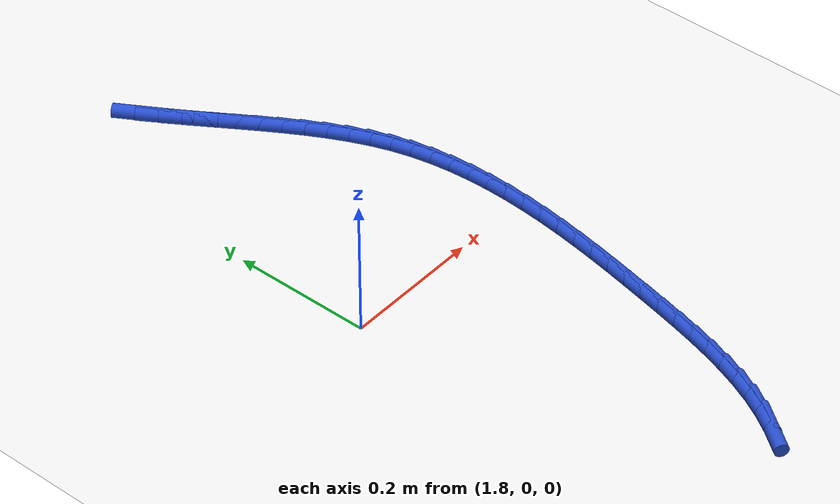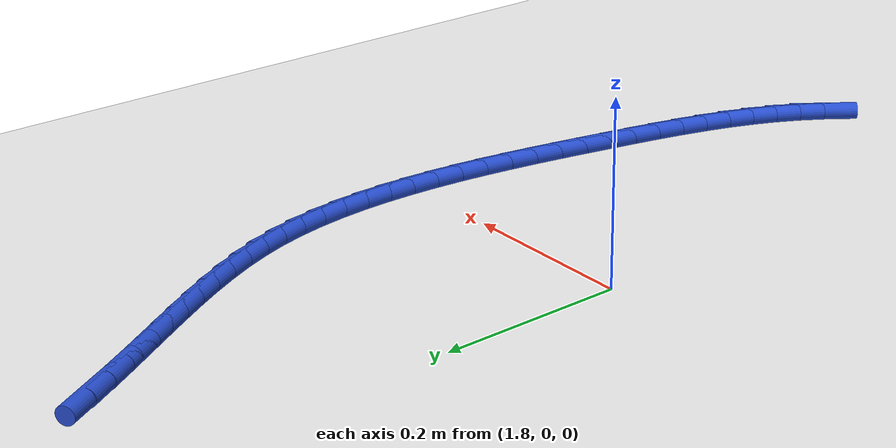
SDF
<sdf version="1.6">
 <world name="default">
  <model name="ground_plane">
   <static>1</static>
   <link name="link">
    <collision name="collision">
     <geometry><plane><normal>0 0 1</normal><size>100 100</size></plane></geometry>
     <surface><friction><ode><mu>100</mu><mu2>50</mu2></ode></friction></surface>
    </collision>
    <visual name="visual">
     <cast_shadows>0</cast_shadows>
     <geometry><plane><normal>0 0 1</normal><size>100 100</size></plane></geometry>
     <material>
      <script><uri>file://media/materials/scripts/gazebo.material</uri><name>Gazebo/WhiteGlow</name></script>
     </material>
    </visual>
   </link>
  </model>
  <model name="line">
   <link name="link_88">
    <pose>1.9231427736042104 0.49322260436814136 0.01 0 1.57 -1.034323555137901</pose>
    <collision name="collision">
     <geometry><cylinder><radius>0.01</radius><length>0.08</length></cylinder></geometry>
    </collision>
    <visual name="visual">
     <material>
      <script><name>Gazebo/Blue</name><uri>file://media/materials/scripts/gazebo.material</uri></script>
     </material>
     <geometry><cylinder><radius>0.01</radius><length>0.08</length></cylinder></geometry>
    </visual>
   </link>
   <link name="link_89">
    <pose>1.9396358434550172 0.465486615626826 0.01 0 1.57 -1.0137122154889575</pose>
    <collision name="collision">
     <geometry><cylinder><radius>0.01</radius><length>0.08</length></cylinder></geometry>
    </collision>
    <visual name="visual">
     <material>
      <script><name>Gazebo/Blue</name><uri>file://media/materials/scripts/gazebo.material</uri></script>
     </material>
     <geometry><cylinder><radius>0.01</radius><length>0.08</length></cylinder></geometry>
    </visual>
   </link>
   <link name="link_90">
    <pose>1.9566392107717923 0.43818928664186235 0.01 0 1.57 -1.0015799758001285</pose>
    <collision name="collision">
     <geometry><cylinder><radius>0.01</radius><length>0.08</length></cylinder></geometry>
    </collision>
    <visual name="visual">
     <material>
      <script><name>Gazebo/Blue</name><uri>file://media/materials/scripts/gazebo.material</uri></script>
     </material>
     <geometry><cylinder><radius>0.01</radius><length>0.08</length></cylinder></geometry>
    </visual>
   </link>
   <link name="link_91">
    <pose>1.9738935290037225 0.4112236632540981 0.01 0 1.57 -0.9979953094751688</pose>
    <collision name="collision">
     <geometry><cylinder><radius>0.01</radius><length>0.08</length></cylinder></geometry>
    </collision>
    <visual name="visual">
     <material>
      <script><name>Gazebo/Blue</name><uri>file://media/materials/scripts/gazebo.material</uri></script>
     </material>
     <geometry><cylinder><radius>0.01</radius><length>0.08</length></cylinder></geometry>
    </visual>
   </link>
   <link name="link_92">
    <pose>1.9911394515999934 0.38448279130438057 0.01 0 1.57 -1.0030992670605055</pose>
    <collision name="collision">
     <geometry><cylinder><radius>0.01</radius><length>0.08</length></cylinder></geometry>
    </collision>
    <visual name="visual">
     <material>
      <script><name>Gazebo/Blue</name><uri>file://media/materials/scripts/gazebo.material</uri></script>
     </material>
     <geometry><cylinder><radius>0.01</radius><length>0.08</length></cylinder></geometry>
    </visual>
   </link>
   <link name="link_93">
    <pose>2.008117632009791 0.3578597166335581 0.01 0 1.57 -1.0171178868025834</pose>
    <collision name="collision">
     <geometry><cylinder><radius>0.01</radius><length>0.08</length></cylinder></geometry>
    </collision>
    <visual name="visual">
     <material>
      <script><name>Gazebo/Blue</name><uri>file://media/materials/scripts/gazebo.material</uri></script>
     </material>
     <geometry><cylinder><radius>0.01</radius><length>0.08</length></cylinder></geometry>
    </visual>
   </link>
   <link name="link_94">
    <pose>2.0245687236823007 0.3312474850824778 0.01 0 1.57 -1.0403564937779026</pose>
    <collision name="collision">
     <geometry><cylinder><radius>0.01</radius><length>0.08</length></cylinder></geometry>
    </collision>
    <visual name="visual">
     <material>
      <script><name>Gazebo/Blue</name><uri>file://media/materials/scripts/gazebo.material</uri></script>
     </material>
     <geometry><cylinder><radius>0.01</radius><length>0.08</length></cylinder></geometry>
    </visual>
   </link>
   <link name="link_95">
    <pose>2.04023338006671 0.3045391424919874 0.01 0 1.57 -1.073171678035509</pose>
    <collision name="collision">
     <geometry><cylinder><radius>0.01</radius><length>0.08</length></cylinder></geometry>
    </collision>
    <visual name="visual">
     <material>
      <script><name>Gazebo/Blue</name><uri>file://media/materials/scripts/gazebo.material</uri></script>
     </material>
     <geometry><cylinder><radius>0.01</radius><length>0.08</length></cylinder></geometry>
    </visual>
   </link>
   <link name="link_96">
    <pose>2.0548522546122028 0.2776277347029349 0.01 0 1.57 -1.1159142051385817</pose>
    <collision name="collision">
     <geometry><cylinder><radius>0.01</radius><length>0.08</length></cylinder></geometry>
    </collision>
    <visual name="visual">
     <material>
      <script><name>Gazebo/Blue</name><uri>file://media/materials/scripts/gazebo.material</uri></script>
     </material>
     <geometry><cylinder><radius>0.01</radius><length>0.08</length></cylinder></geometry>
    </visual>
   </link>
   <link name="link_97">
    <pose>2.0681660007679668 0.2504063075561678 0.01 0 1.57 -1.1688352482575683</pose>
    <collision name="collision">
     <geometry><cylinder><radius>0.01</radius><length>0.08</length></cylinder></geometry>
    </collision>
    <visual name="visual">
     <material>
      <script><name>Gazebo/Blue</name><uri>file://media/materials/scripts/gazebo.material</uri></script>
     </material>
     <geometry><cylinder><radius>0.01</radius><length>0.08</length></cylinder></geometry>
    </visual>
   </link>
   <link name="link_98">
    <pose>2.0799152719831877 0.22276790689253329 0.01 0 1.57 -1.2319520110793298</pose>
    <collision name="collision">
     <geometry><cylinder><radius>0.01</radius><length>0.08</length></cylinder></geometry>
    </collision>
    <visual name="visual">
     <material>
      <script><name>Gazebo/Blue</name><uri>file://media/materials/scripts/gazebo.material</uri></script>
     </material>
     <geometry><cylinder><radius>0.01</radius><length>0.08</length></cylinder></geometry>
    </visual>
   </link>
   <link name="link_99">
    <pose>2.0898407217070507 0.19460557855287974 0.01 0 1.57 -1.303348567766843</pose>
    <collision name="collision">
     <geometry><cylinder><radius>0.01</radius><length>0.08</length></cylinder></geometry>
    </collision>
    <visual name="visual">
     <material>
      <script><name>Gazebo/Blue</name><uri>file://media/materials/scripts/gazebo.material</uri></script>
     </material>
     <geometry><cylinder><radius>0.01</radius><length>0.08</length></cylinder></geometry>
    </visual>
   </link>
   <link name="link_100">
    <pose>2.0977255725825175 0.16583004642413923 0.01 0 1.57 -1.3729117842453613</pose>
    <collision name="collision">
     <geometry><cylinder><radius>0.01</radius><length>0.08</length></cylinder></geometry>
    </collision>
    <visual name="visual">
     <material>
      <script><name>Gazebo/Blue</name><uri>file://media/materials/scripts/gazebo.material</uri></script>
     </material>
     <geometry><cylinder><radius>0.01</radius><length>0.08</length></cylinder></geometry>
    </visual>
   </link>
   <link name="link_101">
    <pose>2.10361440485487 0.13646057043371787 0.01 0 1.57 -1.4366201459789791</pose>
    <collision name="collision">
     <geometry><cylinder><radius>0.01</radius><length>0.08</length></cylinder></geometry>
    </collision>
    <visual name="visual">
     <material>
      <script><name>Gazebo/Blue</name><uri>file://media/materials/scripts/gazebo.material</uri></script>
     </material>
     <geometry><cylinder><radius>0.01</radius><length>0.08</length></cylinder></geometry>
    </visual>
   </link>
   <link name="link_102">
    <pose>2.1076509270304493 0.1065575762867098 0.01 0 1.57 -1.4943028252273232</pose>
    <collision name="collision">
     <geometry><cylinder><radius>0.01</radius><length>0.08</length></cylinder></geometry>
    </collision>
    <visual name="visual">
     <material>
      <script><name>Gazebo/Blue</name><uri>file://media/materials/scripts/gazebo.material</uri></script>
     </material>
     <geometry><cylinder><radius>0.01</radius><length>0.08</length></cylinder></geometry>
    </visual>
   </link>
   <link name="link_103">
    <pose>2.1099790368092286 0.07618156825614703 0.01 0 1.57 -1.5460001159119736</pose>
    <collision name="collision">
     <geometry><cylinder><radius>0.01</radius><length>0.08</length></cylinder></geometry>
    </collision>
    <visual name="visual">
     <material>
      <script><name>Gazebo/Blue</name><uri>file://media/materials/scripts/gazebo.material</uri></script>
     </material>
     <geometry><cylinder><radius>0.01</radius><length>0.08</length></cylinder></geometry>
    </visual>
   </link>
   <link name="link_104">
    <pose>2.110742631891185 0.04539305061506203 0.01 0 1.57 1.549700841342344</pose>
    <collision name="collision">
     <geometry><cylinder><radius>0.01</radius><length>0.08</length></cylinder></geometry>
    </collision>
    <visual name="visual">
     <material>
      <script><name>Gazebo/Blue</name><uri>file://media/materials/scripts/gazebo.material</uri></script>
     </material>
     <geometry><cylinder><radius>0.01</radius><length>0.08</length></cylinder></geometry>
    </visual>
   </link>
   <link name="link_105">
    <pose>2.110085609976291 0.014252527636487251 0.01 0 1.57 1.5093523970121467</pose>
    <collision name="collision">
     <geometry><cylinder><radius>0.01</radius><length>0.08</length></cylinder></geometry>
    </collision>
    <visual name="visual">
     <material>
      <script><name>Gazebo/Blue</name><uri>file://media/materials/scripts/gazebo.material</uri></script>
     </material>
     <geometry><cylinder><radius>0.01</radius><length>0.08</length></cylinder></geometry>
    </visual>
   </link>
   <link name="link_106">
    <pose>2.1081518687645247 -0.01717949640654565 0.01 0 1.57 1.4742474728186852</pose>
    <collision name="collision">
     <geometry><cylinder><radius>0.01</radius><length>0.08</length></cylinder></geometry>
    </collision>
    <visual name="visual">
     <material>
      <script><name>Gazebo/Blue</name><uri>file://media/materials/scripts/gazebo.material</uri></script>
     </material>
     <geometry><cylinder><radius>0.01</radius><length>0.08</length></cylinder></geometry>
    </visual>
   </link>
   <link name="link_107">
    <pose>2.105085305955859 -0.04884251724100276 0.01 0 1.57 1.4440821382097437</pose>
    <collision name="collision">
     <geometry><cylinder><radius>0.01</radius><length>0.08</length></cylinder></geometry>
    </collision>
    <visual name="visual">
     <material>
      <script><name>Gazebo/Blue</name><uri>file://media/materials/scripts/gazebo.material</uri></script>
     </material>
     <geometry><cylinder><radius>0.01</radius><length>0.08</length></cylinder></geometry>
    </visual>
   </link>
   <link name="link_108">
    <pose>2.1010298192502703 -0.08067603059385237 0.01 0 1.57 1.4185712506821853</pose>
    <collision name="collision">
     <geometry><cylinder><radius>0.01</radius><length>0.08</length></cylinder></geometry>
    </collision>
    <visual name="visual">
     <material>
      <script><name>Gazebo/Blue</name><uri>file://media/materials/scripts/gazebo.material</uri></script>
     </material>
     <geometry><cylinder><radius>0.01</radius><length>0.08</length></cylinder></geometry>
    </visual>
   </link>
   <link name="link_109">
    <pose>2.0961293063477338 -0.11261953219206211 0.01 0 1.57 1.3974636527629614</pose>
    <collision name="collision">
     <geometry><cylinder><radius>0.01</radius><length>0.08</length></cylinder></geometry>
    </collision>
    <visual name="visual">
     <material>
      <script><name>Gazebo/Blue</name><uri>file://media/materials/scripts/gazebo.material</uri></script>
     </material>
     <geometry><cylinder><radius>0.01</radius><length>0.08</length></cylinder></geometry>
    </visual>
   </link>
   <link name="link_110">
    <pose>2.0905276649482243 -0.14461251776259954 0.01 0 1.57 1.3805519282010799</pose>
    <collision name="collision">
     <geometry><cylinder><radius>0.01</radius><length>0.08</length></cylinder></geometry>
    </collision>
    <visual name="visual">
     <material>
      <script><name>Gazebo/Blue</name><uri>file://media/materials/scripts/gazebo.material</uri></script>
     </material>
     <geometry><cylinder><radius>0.01</radius><length>0.08</length></cylinder></geometry>
    </visual>
   </link>
   <link name="link_111">
    <pose>2.0843687927517167 -0.1765944830324322 0.01 0 1.57 1.3676786975403419</pose>
    <collision name="collision">
     <geometry><cylinder><radius>0.01</radius><length>0.08</length></cylinder></geometry>
    </collision>
    <visual name="visual">
     <material>
      <script><name>Gazebo/Blue</name><uri>file://media/materials/scripts/gazebo.material</uri></script>
     </material>
     <geometry><cylinder><radius>0.01</radius><length>0.08</length></cylinder></geometry>
    </visual>
   </link>
   <link name="link_112">
    <pose>2.0777965874581863 -0.2085049237285284 0.01 0 1.57 1.358740999252636</pose>
    <collision name="collision">
     <geometry><cylinder><radius>0.01</radius><length>0.08</length></cylinder></geometry>
    </collision>
    <visual name="visual">
     <material>
      <script><name>Gazebo/Blue</name><uri>file://media/materials/scripts/gazebo.material</uri></script>
     </material>
     <geometry><cylinder><radius>0.01</radius><length>0.08</length></cylinder></geometry>
    </visual>
   </link>
   <link name="link_113">
    <pose>2.0709549467676087 -0.24028333557785422 0.01 0 1.57 1.3524007140900016</pose>
    <collision name="collision">
     <geometry><cylinder><radius>0.01</radius><length>0.08</length></cylinder></geometry>
    </collision>
    <visual name="visual">
     <material>
      <script><name>Gazebo/Blue</name><uri>file://media/materials/scripts/gazebo.material</uri></script>
     </material>
     <geometry><cylinder><radius>0.01</radius><length>0.08</length></cylinder></geometry>
    </visual>
   </link>
   <link name="link_114">
    <pose>2.063946514879078 -0.27186203649293494 0.01 0 1.57 1.3408230713091254</pose>
    <collision name="collision">
     <geometry><cylinder><radius>0.01</radius><length>0.08</length></cylinder></geometry>
    </collision>
    <visual name="visual">
     <material>
      <script><name>Gazebo/Blue</name><uri>file://media/materials/scripts/gazebo.material</uri></script>
     </material>
     <geometry><cylinder><radius>0.01</radius><length>0.08</length></cylinder></geometry>
    </visual>
   </link>
   <link name="link_115">
    <pose>2.0566261564218524 -0.30313023251125193 0.01 0 1.57 1.320885094884183</pose>
    <collision name="collision">
     <geometry><cylinder><radius>0.01</radius><length>0.08</length></cylinder></geometry>
    </collision>
    <visual name="visual">
     <material>
      <script><name>Gazebo/Blue</name><uri>file://media/materials/scripts/gazebo.material</uri></script>
     </material>
     <geometry><cylinder><radius>0.01</radius><length>0.08</length></cylinder></geometry>
    </visual>
   </link>
   <link name="link_116">
    <pose>2.0487566564866557 -0.3339611084883868 0.01 0 1.57 1.2922408024189949</pose>
    <collision name="collision">
     <geometry><cylinder><radius>0.01</radius><length>0.08</length></cylinder></geometry>
    </collision>
    <visual name="visual">
     <material>
      <script><name>Gazebo/Blue</name><uri>file://media/materials/scripts/gazebo.material</uri></script>
     </material>
     <geometry><cylinder><radius>0.01</radius><length>0.08</length></cylinder></geometry>
    </visual>
   </link>
   <link name="link_117">
    <pose>2.040100646883882 -0.36422782261023917 0.01 0 1.57 1.2544929729858</pose>
    <collision name="collision">
     <geometry><cylinder><radius>0.01</radius><length>0.08</length></cylinder></geometry>
    </collision>
    <visual name="visual">
     <material>
      <script><name>Gazebo/Blue</name><uri>file://media/materials/scripts/gazebo.material</uri></script>
     </material>
     <geometry><cylinder><radius>0.01</radius><length>0.08</length></cylinder></geometry>
    </visual>
   </link>
   <link name="link_118">
    <pose>2.0304207594239263 -0.39380353306270854 0.01 0 1.57 1.2072499664044438</pose>
    <collision name="collision">
     <geometry><cylinder><radius>0.01</radius><length>0.08</length></cylinder></geometry>
    </collision>
    <visual name="visual">
     <material>
      <script><name>Gazebo/Blue</name><uri>file://media/materials/scripts/gazebo.material</uri></script>
     </material>
     <geometry><cylinder><radius>0.01</radius><length>0.08</length></cylinder></geometry>
    </visual>
   </link>
   <link name="link_119">
    <pose>2.0194796259171808 -0.42256139803169473 0.01 0 1.57 1.1502225458440878</pose>
    <collision name="collision">
     <geometry><cylinder><radius>0.01</radius><length>0.08</length></cylinder></geometry>
    </collision>
    <visual name="visual">
     <material>
      <script><name>Gazebo/Blue</name><uri>file://media/materials/scripts/gazebo.material</uri></script>
     </material>
     <geometry><cylinder><radius>0.01</radius><length>0.08</length></cylinder></geometry>
    </visual>
   </link>
   <link name="link_120">
    <pose>2.0070398781740404 -0.45037457570309597 0.01 0 1.57 1.0833601980526102</pose>
    <collision name="collision">
     <geometry><cylinder><radius>0.01</radius><length>0.08</length></cylinder></geometry>
    </collision>
    <visual name="visual">
     <material>
      <script><name>Gazebo/Blue</name><uri>file://media/materials/scripts/gazebo.material</uri></script>
     </material>
     <geometry><cylinder><radius>0.01</radius><length>0.08</length></cylinder></geometry>
    </visual>
   </link>
   <link name="link_121">
    <pose>1.9928641480048992 -0.47711622426281225 0.01 0 1.57 1.0091399532749665</pose>
    <collision name="collision">
     <geometry><cylinder><radius>0.01</radius><length>0.08</length></cylinder></geometry>
    </collision>
    <visual name="visual">
     <material>
      <script><name>Gazebo/Blue</name><uri>file://media/materials/scripts/gazebo.material</uri></script>
     </material>
     <geometry><cylinder><radius>0.01</radius><length>0.08</length></cylinder></geometry>
    </visual>
   </link>
   <link name="link_122">
    <pose>1.9767700634772696 -0.5026924575583503 0.01 0 1.57 0.9401608742502992</pose>
    <collision name="collision">
     <geometry><cylinder><radius>0.01</radius><length>0.08</length></cylinder></geometry>
    </collision>
    <visual name="visual">
     <material>
      <script><name>Gazebo/Blue</name><uri>file://media/materials/scripts/gazebo.material</uri></script>
     </material>
     <geometry><cylinder><radius>0.01</radius><length>0.08</length></cylinder></geometry>
    </visual>
   </link>
  </model>
 </world>
</sdf>
